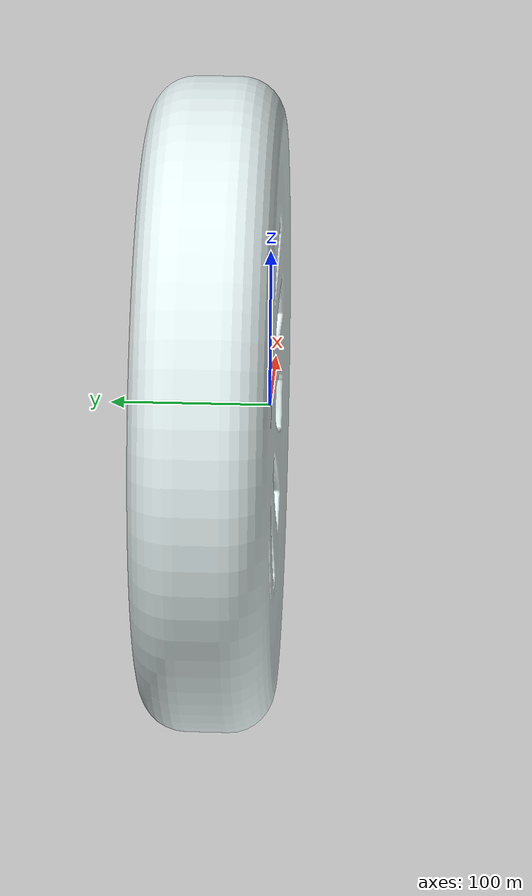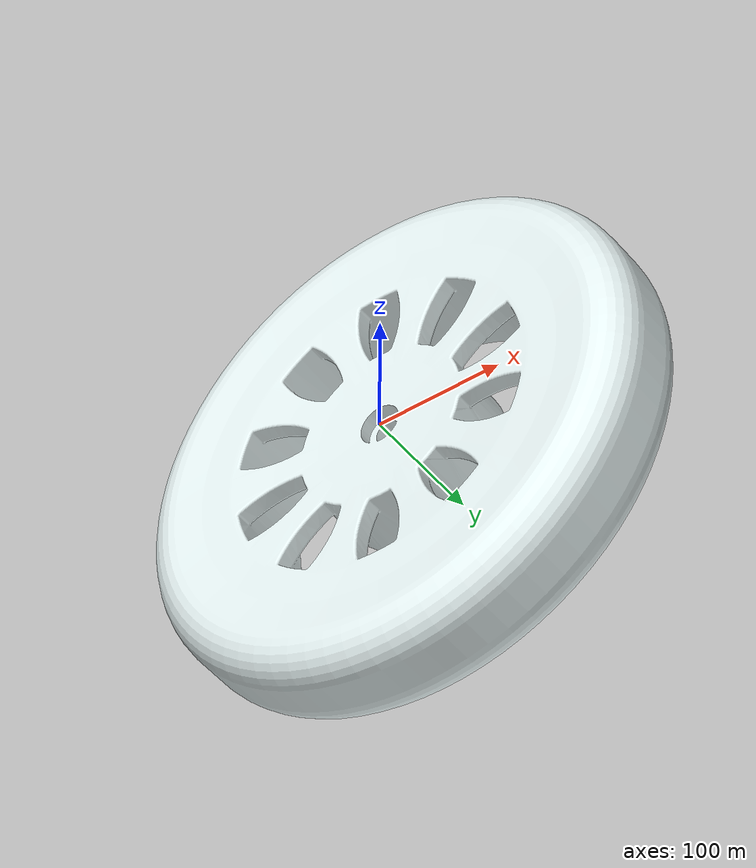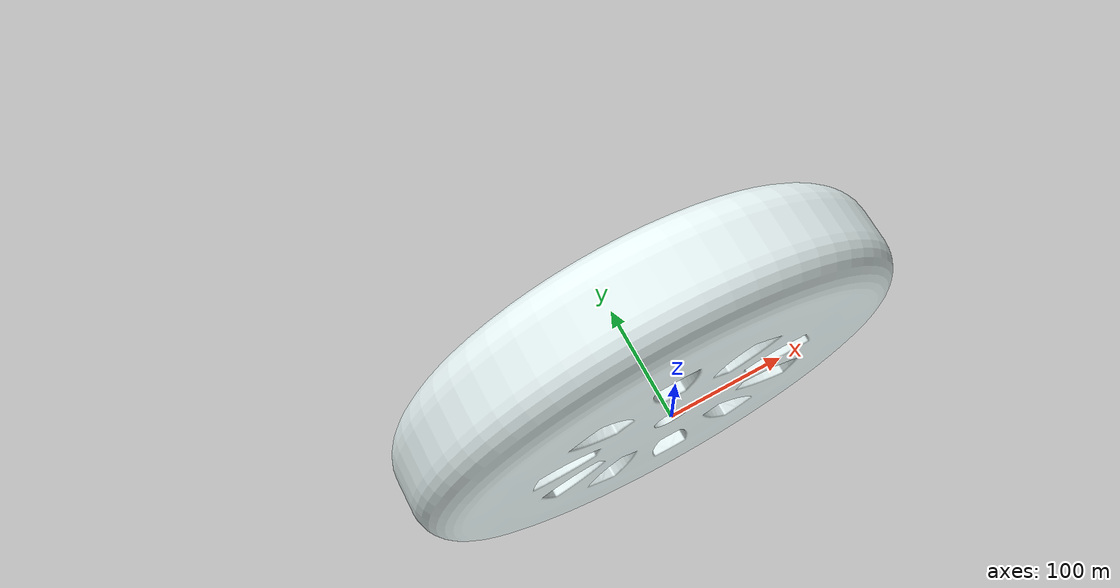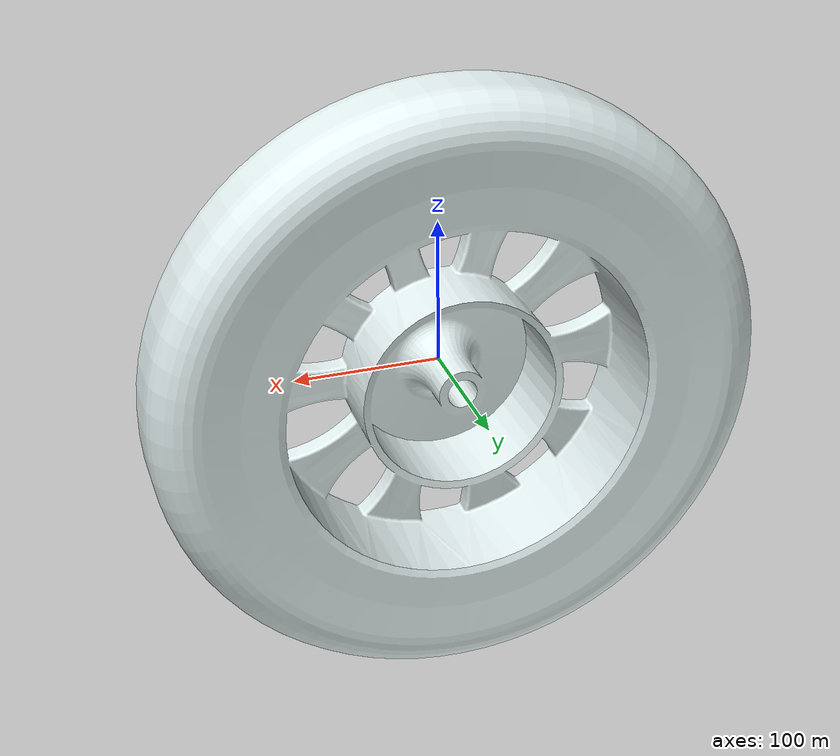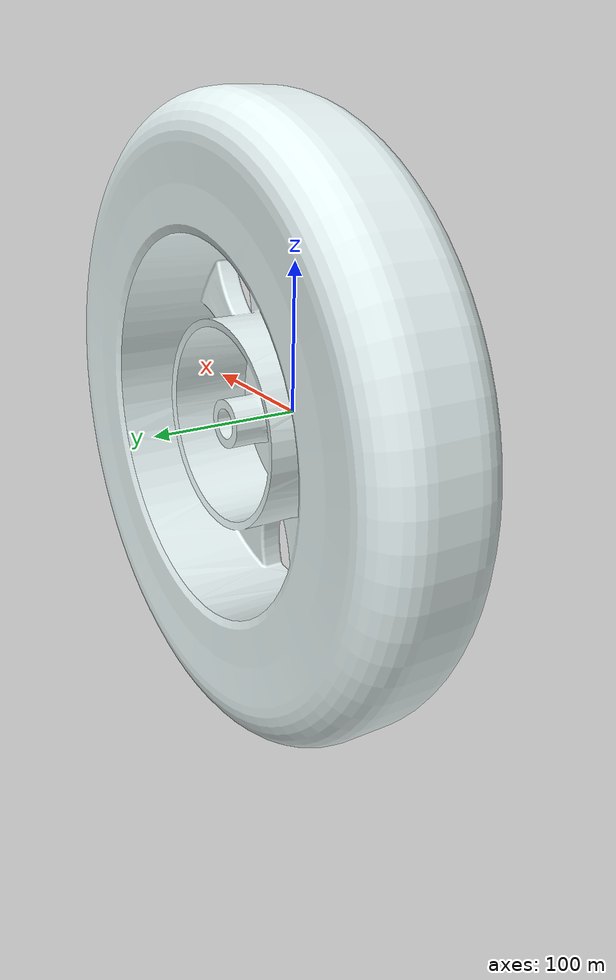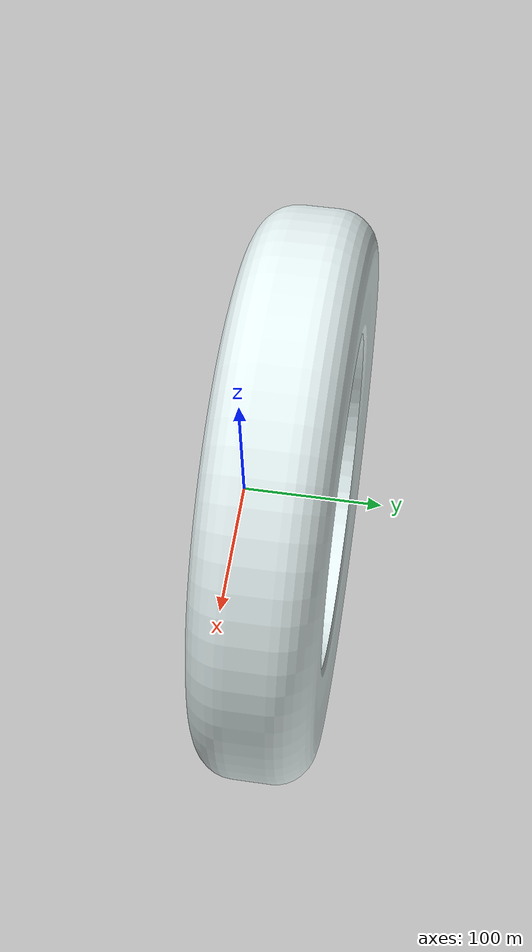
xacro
<?xml version="1.0"?>
<robot name="test_robot" xmlns:xacro="http://ros.org/wiki/xacro">
    <!-- Single material -->
    <material name="grey">
        <color rgba="0.9 0.95 0.95 1.0" />
    </material>

    <!-- Only essential properties -->
    <xacro:property name="scale_stl" value="1 1 1" />
    <xacro:property name="wheel_dist_x" value="0.21" />
    <xacro:property name="wheel_dist_y" value="0.35" />

    <!-- Base link -->
    <link name="base_link">
        <inertial>
            <mass value="0.1" />
            <origin xyz="0 0 0" rpy="0 0 0" />
            <inertia ixx="0.001" ixy="0" ixz="0" iyy="0.001" iyz="0" izz="0.001" />
        </inertial>
    </link>

    <!-- Base -->
    <link name="base">
        <visual>
            <origin xyz="0.0 0.0 0.0" rpy="0.0 0.0 0.0" />
            <geometry>
                <box size="0.5 0.3 0.15" />
            </geometry>
            <material name="grey" />
        </visual>
        <collision>
            <geometry>
                <box size="0.5 0.3 0.15" />
            </geometry>
        </collision>
        <inertial>
            <mass value="15.0" />
            <origin xyz="0 0 0" rpy="0 0 0" />
            <inertia
                ixx="0.2" ixy="0.0" ixz="0.0"
                iyy="0.2" iyz="0.0"
                izz="0.2" />
        </inertial>
    </link>

    <!-- Single wheel -->
    <link name="front_right_wheel">
        <visual>
            <origin xyz="0 0 0" rpy="0 0 0" />
            <geometry>
                <mesh filename="package://myrobot_description/stl/blue_tyre.stl"
                    scale="${scale_stl}" />
            </geometry>

            <material name="grey" />
        </visual>
        <collision>
            <geometry>
                <cylinder radius="0.1" length="0.05" />
            </geometry>

        </collision>
        <inertial>
            <mass value="1.0" />
            <origin xyz="0 0 0" rpy="0 0 0" />
            <inertia
                ixx="0.001" ixy="0" ixz="0"
                iyy="0.001" iyz="0"
                izz="0.001" />
        </inertial>
    </link>

    <!-- Basic joints -->
    <joint name="base_link_to_base" type="fixed">
        <parent link="base_link" />
        <child link="base" />
        <origin xyz="0 0 0" rpy="0 0 0" />
    </joint>

    <joint name="front_right_wheel_joint" type="continuous">
        <origin xyz="${wheel_dist_x} -${wheel_dist_y} 0" rpy="0 0 0" />
        <parent link="base" />
        <child link="front_right_wheel" />
        <axis xyz="0 1 0" />
    </joint>

</robot>
